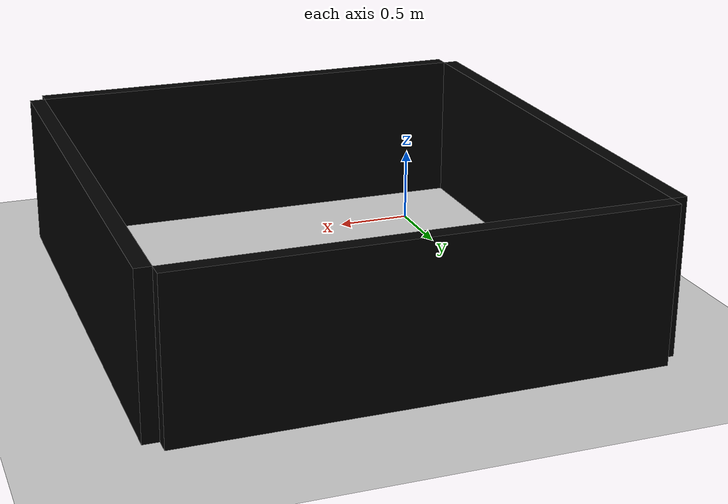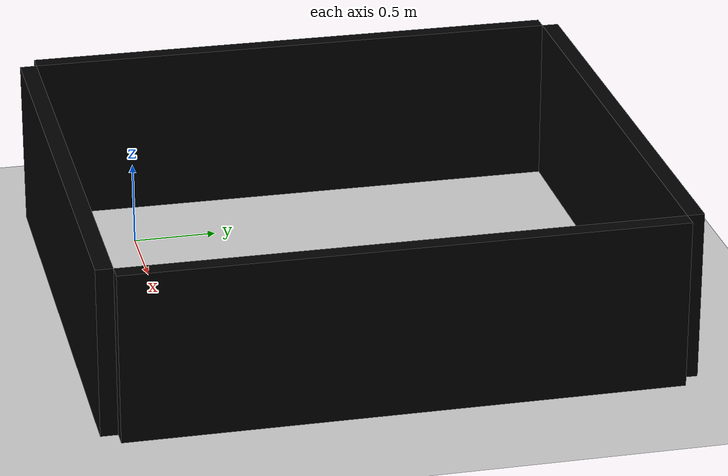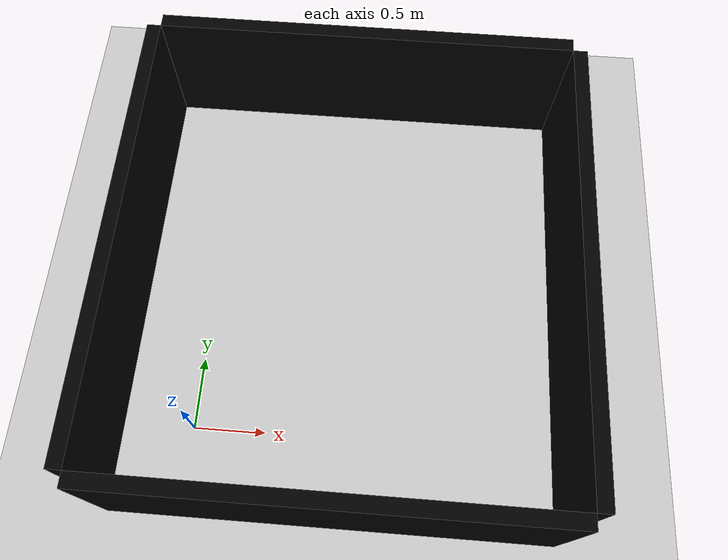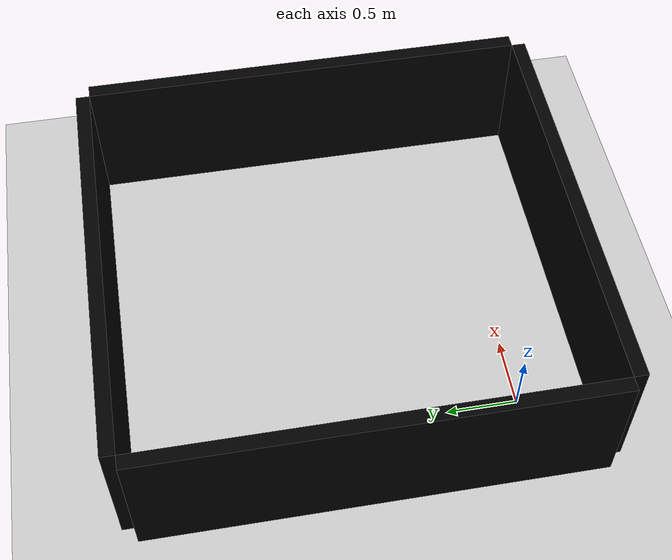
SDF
<?xml version="1.0" ?>
<sdf version="1.8">
  <world name="square_test_world">
    <physics name="ode_physics" default="true" type="ode">
      <max_step_size>0.001</max_step_size>
      <real_time_factor>1.0</real_time_factor>
      <real_time_update_rate>1000</real_time_update_rate>
      <max_contacts>20</max_contacts>

      <ode>
        <solver>
          <type>quick</type>
          <iters>50</iters>
          <sor>1.3</sor>
        </solver>
        <constraints>
          <cfm>0.0001</cfm>
          <erp>0.2</erp>
        </constraints>
      </ode>
    </physics>
    <gravity>0 0 -9.81</gravity>

    <plugin
      filename="gz-sim-physics-system"
      name="gz::sim::systems::Physics">
    </plugin>
    <plugin
      filename="gz-sim-user-commands-system"
      name="gz::sim::systems::UserCommands">
    </plugin>
    <plugin
      filename="gz-sim-scene-broadcaster-system"
      name="gz::sim::systems::SceneBroadcaster">
    </plugin>

    <light type="directional" name="sun">
      <cast_shadows>false</cast_shadows>
      <pose>0 0 10 0 0 0</pose>
      <diffuse>0.8 0.8 0.8 1</diffuse>
      <specular>0.2 0.2 0.2 1</specular>
      <attenuation>
        <range>1000</range>
        <constant>0.9</constant>
        <linear>0.01</linear>
        <quadratic>0.001</quadratic>
      </attenuation>
      <direction>-0.5 0.1 -0.9</direction>
    </light>

    <model name="ground">
      <static>true</static>
      <link name="link">
        <collision name="collision">
          <geometry>
            <plane>
              <normal>0 0 1</normal>
              <size>100 100</size>
            </plane>
          </geometry>
        </collision>
        <visual name="visual">
          <geometry>
            <plane>
              <normal>0 0 1</normal>
              <size>100 100</size>
            </plane>
          </geometry>
          <material>
            <ambient>0.8 0.8 0.8 1</ambient>
            <diffuse>0.8 0.8 0.8 1</diffuse>
            <specular>0.8 0.8 0.8 1</specular>
          </material>
        </visual>
      </link>
    </model>

    <model name="left">
      <pose>1.0 -0.55 0.5 0 0 0</pose>
      <static>true</static>
      <link name="link">
        <visual name="visual">
          <geometry>
            <box>
              <size>3.0 0.1 1.0</size>
            </box>
          </geometry>
          <material>
            <ambient>0 0 0 1</ambient>
            <diffuse>0 0 0 1</diffuse>
          </material>
        </visual>
        <collision name="collision">
          <geometry>
            <box>
             <size>3.0 0.1 1.0</size>
            </box>
          </geometry>
        </collision>
      </link>
    </model>

    <model name="right">
      <pose>1.0 2.75 0.5 0 0 0</pose>
      <static>true</static>
      <link name="link">
        <visual name="visual">
          <geometry>
            <box>
              <size>3.0 0.1 1.0</size>
            </box>
          </geometry>
          <material>
            <ambient>0 0 0 1</ambient>
            <diffuse>0 0 0 1</diffuse>
          </material>
        </visual>
        <collision name="collision">
          <geometry>
            <box>
             <size>3.0 0.1 1.0</size>
            </box>
          </geometry>
        </collision>
      </link>
    </model>

    <model name="bottom">
      <pose>-0.55 1.1 0.5 0 0 0</pose>
      <static>true</static>
      <link name="link">
        <visual name="visual">
          <geometry>
            <box>
              <size>0.1 3.2 1.0</size>
            </box>
          </geometry>
          <material>
            <ambient>0 0 0 1</ambient>
            <diffuse>0 0 0 1</diffuse>
          </material>
        </visual>
        <collision name="collision">
          <geometry>
            <box>
             <size>0.1 3.2 1.0</size>
            </box>
          </geometry>
        </collision>
      </link>
    </model>

    <model name="top">
      <pose>2.55 1.1 0.5 0 0 0</pose>
      <static>true</static>
      <link name="link">
        <visual name="visual">
          <geometry>
            <box>
              <size>0.1 3.2 1.0</size>
            </box>
          </geometry>
          <material>
            <ambient>0 0 0 1</ambient>
            <diffuse>0 0 0 1</diffuse>
          </material>
        </visual>
        <collision name="collision">
          <geometry>
            <box>
             <size>0.1 3.2 1.0</size>
            </box>
          </geometry>
        </collision>
      </link>
    </model>
  </world>
</sdf>
